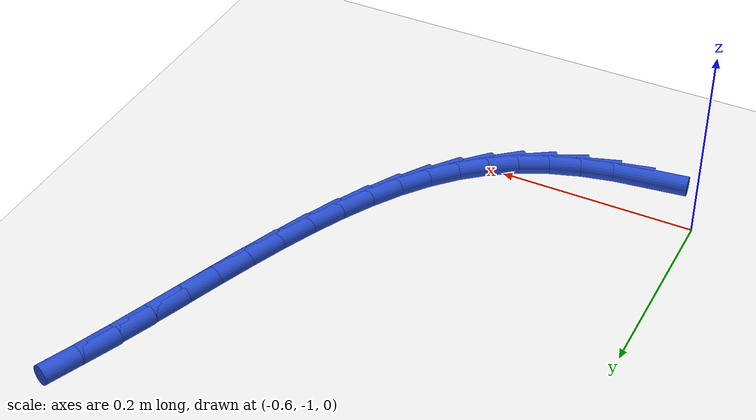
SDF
<sdf version="1.6">
 <world name="default">
  <model name="ground_plane">
   <static>1</static>
   <link name="link">
    <collision name="collision">
     <geometry><plane><normal>0 0 1</normal><size>100 100</size></plane></geometry>
     <surface><friction><ode><mu>100</mu><mu2>50</mu2></ode></friction></surface>
    </collision>
    <visual name="visual">
     <cast_shadows>0</cast_shadows>
     <geometry><plane><normal>0 0 1</normal><size>100 100</size></plane></geometry>
     <material>
      <script><uri>file://media/materials/scripts/gazebo.material</uri><name>Gazebo/WhiteGlow</name></script>
     </material>
    </visual>
   </link>
  </model>
  <model name="line">
   <link name="link_185">
    <pose>-0.5379210455129261 -1.0467757696957056 0.01 0 1.57 0.1337747944488026</pose>
    <collision name="collision">
     <geometry><cylinder><radius>0.01</radius><length>0.08</length></cylinder></geometry>
    </collision>
    <visual name="visual">
     <material>
      <script><name>Gazebo/Blue</name><uri>file://media/materials/scripts/gazebo.material</uri></script>
     </material>
     <geometry><cylinder><radius>0.01</radius><length>0.08</length></cylinder></geometry>
    </visual>
   </link>
   <link name="link_186">
    <pose>-0.5034757016233216 -1.0421401653956281 0.01 0 1.57 0.2250162053529717</pose>
    <collision name="collision">
     <geometry><cylinder><radius>0.01</radius><length>0.08</length></cylinder></geometry>
    </collision>
    <visual name="visual">
     <material>
      <script><name>Gazebo/Blue</name><uri>file://media/materials/scripts/gazebo.material</uri></script>
     </material>
     <geometry><cylinder><radius>0.01</radius><length>0.08</length></cylinder></geometry>
    </visual>
   </link>
   <link name="link_187">
    <pose>-0.4707181495971224 -1.0346422098908756 0.01 0 1.57 0.3295111826057571</pose>
    <collision name="collision">
     <geometry><cylinder><radius>0.01</radius><length>0.08</length></cylinder></geometry>
    </collision>
    <visual name="visual">
     <material>
      <script><name>Gazebo/Blue</name><uri>file://media/materials/scripts/gazebo.material</uri></script>
     </material>
     <geometry><cylinder><radius>0.01</radius><length>0.08</length></cylinder></geometry>
    </visual>
   </link>
   <link name="link_188">
    <pose>-0.4398715281279935 -1.0240933195478845 0.01 0 1.57 0.44770065931507186</pose>
    <collision name="collision">
     <geometry><cylinder><radius>0.01</radius><length>0.08</length></cylinder></geometry>
    </collision>
    <visual name="visual">
     <material>
      <script><name>Gazebo/Blue</name><uri>file://media/materials/scripts/gazebo.material</uri></script>
     </material>
     <geometry><cylinder><radius>0.01</radius><length>0.08</length></cylinder></geometry>
    </visual>
   </link>
   <link name="link_189">
    <pose>-0.4111589759096015 -1.010304910733091 0.01 0 1.57 0.5784270714945011</pose>
    <collision name="collision">
     <geometry><cylinder><radius>0.01</radius><length>0.08</length></cylinder></geometry>
    </collision>
    <visual name="visual">
     <material>
      <script><name>Gazebo/Blue</name><uri>file://media/materials/scripts/gazebo.material</uri></script>
     </material>
     <geometry><cylinder><radius>0.01</radius><length>0.08</length></cylinder></geometry>
    </visual>
   </link>
   <link name="link_190">
    <pose>-0.38479883824128736 -0.9930937795294632 0.01 0 1.57 0.7098454175816246</pose>
    <collision name="collision">
     <geometry><cylinder><radius>0.01</radius><length>0.08</length></cylinder></geometry>
    </collision>
    <visual name="visual">
     <material>
      <script><name>Gazebo/Blue</name><uri>file://media/materials/scripts/gazebo.material</uri></script>
     </material>
     <geometry><cylinder><radius>0.01</radius><length>0.08</length></cylinder></geometry>
    </visual>
   </link>
   <link name="link_191">
    <pose>-0.36081981428106175 -0.9724895654484139 0.01 0 1.57 0.8265011332499624</pose>
    <collision name="collision">
     <geometry><cylinder><radius>0.01</radius><length>0.08</length></cylinder></geometry>
    </collision>
    <visual name="visual">
     <material>
      <script><name>Gazebo/Blue</name><uri>file://media/materials/scripts/gazebo.material</uri></script>
     </material>
     <geometry><cylinder><radius>0.01</radius><length>0.08</length></cylinder></geometry>
    </visual>
   </link>
   <link name="link_192">
    <pose>-0.33900231812531023 -0.9488005629920399 0.01 0 1.57 0.9259087541618166</pose>
    <collision name="collision">
     <geometry><cylinder><radius>0.01</radius><length>0.08</length></cylinder></geometry>
    </collision>
    <visual name="visual">
     <material>
      <script><name>Gazebo/Blue</name><uri>file://media/materials/scripts/gazebo.material</uri></script>
     </material>
     <geometry><cylinder><radius>0.01</radius><length>0.08</length></cylinder></geometry>
    </visual>
   </link>
   <link name="link_193">
    <pose>-0.3191099751899075 -0.9223539089140874 0.01 0 1.57 1.0083382295523866</pose>
    <collision name="collision">
     <geometry><cylinder><radius>0.01</radius><length>0.08</length></cylinder></geometry>
    </collision>
    <visual name="visual">
     <material>
      <script><name>Gazebo/Blue</name><uri>file://media/materials/scripts/gazebo.material</uri></script>
     </material>
     <geometry><cylinder><radius>0.01</radius><length>0.08</length></cylinder></geometry>
    </visual>
   </link>
   <link name="link_194">
    <pose>-0.3009064108907283 -0.8934767399683023 0.01 0 1.57 1.0751217966829496</pose>
    <collision name="collision">
     <geometry><cylinder><radius>0.01</radius><length>0.08</length></cylinder></geometry>
    </collision>
    <visual name="visual">
     <material>
      <script><name>Gazebo/Blue</name><uri>file://media/materials/scripts/gazebo.material</uri></script>
     </material>
     <geometry><cylinder><radius>0.01</radius><length>0.08</length></cylinder></geometry>
    </visual>
   </link>
   <link name="link_195">
    <pose>-0.284155250643647 -0.8624961929084304 0.01 0 1.57 1.1279545214779834</pose>
    <collision name="collision">
     <geometry><cylinder><radius>0.01</radius><length>0.08</length></cylinder></geometry>
    </collision>
    <visual name="visual">
     <material>
      <script><name>Gazebo/Blue</name><uri>file://media/materials/scripts/gazebo.material</uri></script>
     </material>
     <geometry><cylinder><radius>0.01</radius><length>0.08</length></cylinder></geometry>
    </visual>
   </link>
   <link name="link_196">
    <pose>-0.26862011986453904 -0.8297394044882187 0.01 0 1.57 1.1684807553372074</pose>
    <collision name="collision">
     <geometry><cylinder><radius>0.01</radius><length>0.08</length></cylinder></geometry>
    </collision>
    <visual name="visual">
     <material>
      <script><name>Gazebo/Blue</name><uri>file://media/materials/scripts/gazebo.material</uri></script>
     </material>
     <geometry><cylinder><radius>0.01</radius><length>0.08</length></cylinder></geometry>
    </visual>
   </link>
   <link name="link_197">
    <pose>-0.25406464396927875 -0.7955335114614128 0.01 0 1.57 1.1980970706513518</pose>
    <collision name="collision">
     <geometry><cylinder><radius>0.01</radius><length>0.08</length></cylinder></geometry>
    </collision>
    <visual name="visual">
     <material>
      <script><name>Gazebo/Blue</name><uri>file://media/materials/scripts/gazebo.material</uri></script>
     </material>
     <geometry><cylinder><radius>0.01</radius><length>0.08</length></cylinder></geometry>
    </visual>
   </link>
   <link name="link_198">
    <pose>-0.24025244837374082 -0.7602056505817587 0.01 0 1.57 1.217880779909603</pose>
    <collision name="collision">
     <geometry><cylinder><radius>0.01</radius><length>0.08</length></cylinder></geometry>
    </collision>
    <visual name="visual">
     <material>
      <script><name>Gazebo/Blue</name><uri>file://media/materials/scripts/gazebo.material</uri></script>
     </material>
     <geometry><cylinder><radius>0.01</radius><length>0.08</length></cylinder></geometry>
    </visual>
   </link>
   <link name="link_199">
    <pose>-0.22694715849379968 -0.7240829586030016 0.01 0 1.57 1.2285782011499233</pose>
    <collision name="collision">
     <geometry><cylinder><radius>0.01</radius><length>0.08</length></cylinder></geometry>
    </collision>
    <visual name="visual">
     <material>
      <script><name>Gazebo/Blue</name><uri>file://media/materials/scripts/gazebo.material</uri></script>
     </material>
     <geometry><cylinder><radius>0.01</radius><length>0.08</length></cylinder></geometry>
    </visual>
   </link>
   <link name="link_200">
    <pose>-0.2139123997453307 -0.687492572278889 0.01 0 1.57 1.230614550342268</pose>
    <collision name="collision">
     <geometry><cylinder><radius>0.01</radius><length>0.08</length></cylinder></geometry>
    </collision>
    <visual name="visual">
     <material>
      <script><name>Gazebo/Blue</name><uri>file://media/materials/scripts/gazebo.material</uri></script>
     </material>
     <geometry><cylinder><radius>0.01</radius><length>0.08</length></cylinder></geometry>
    </visual>
   </link>
   <link name="link_201">
    <pose>-0.20091179754420824 -0.6507616283631666 0.01 0 1.57 1.2241063181582186</pose>
    <collision name="collision">
     <geometry><cylinder><radius>0.01</radius><length>0.08</length></cylinder></geometry>
    </collision>
    <visual name="visual">
     <material>
      <script><name>Gazebo/Blue</name><uri>file://media/materials/scripts/gazebo.material</uri></script>
     </material>
     <geometry><cylinder><radius>0.01</radius><length>0.08</length></cylinder></geometry>
    </visual>
   </link>
   <link name="link_202">
    <pose>-0.187708977306307 -0.6142172636095803 0.01 0 1.57 1.2088681552170402</pose>
    <collision name="collision">
     <geometry><cylinder><radius>0.01</radius><length>0.08</length></cylinder></geometry>
    </collision>
    <visual name="visual">
     <material>
      <script><name>Gazebo/Blue</name><uri>file://media/materials/scripts/gazebo.material</uri></script>
     </material>
     <geometry><cylinder><radius>0.01</radius><length>0.08</length></cylinder></geometry>
    </visual>
   </link>
   <link name="link_203">
    <pose>-0.1740675644475014 -0.578186614771875 0.01 0 1.57 1.1844131097659765</pose>
    <collision name="collision">
     <geometry><cylinder><radius>0.01</radius><length>0.08</length></cylinder></geometry>
    </collision>
    <visual name="visual">
     <material>
      <script><name>Gazebo/Blue</name><uri>file://media/materials/scripts/gazebo.material</uri></script>
     </material>
     <geometry><cylinder><radius>0.01</radius><length>0.08</length></cylinder></geometry>
    </visual>
   </link>
  </model>
 </world>
</sdf>
